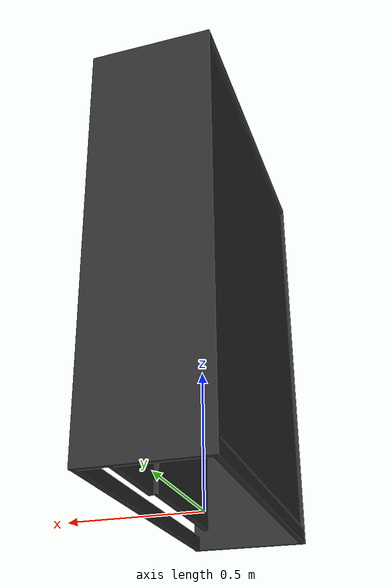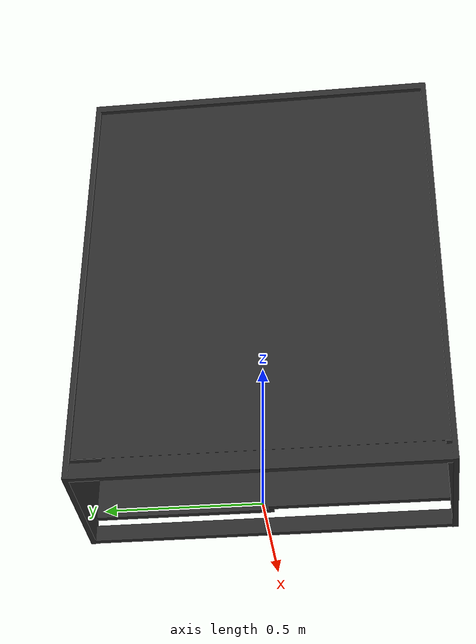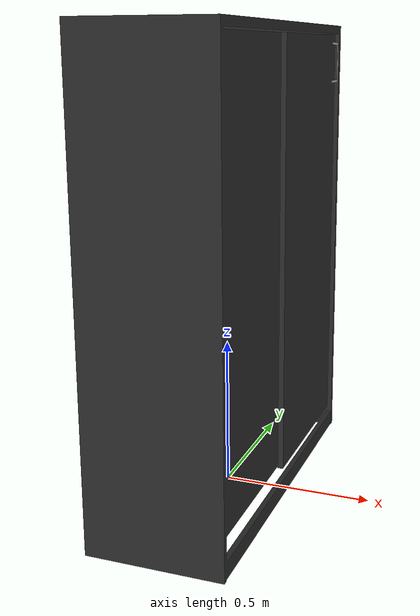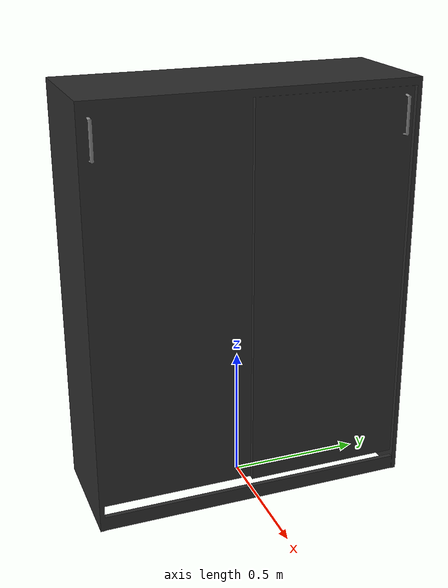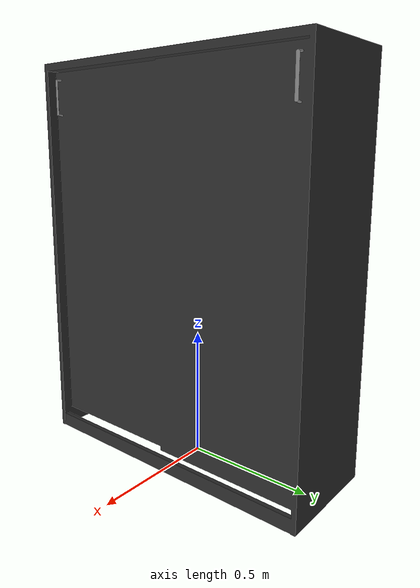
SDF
<?xml version="1.0" ?>
<sdf version="1.0">
  <model name="high_cabinet_fix">
    <static>true</static>
    <link name="high_cabinet_fix">
      <collision name="high_cabinet_fix">
        <pose>0 0 0 0 0 0</pose>
        <geometry>
          <mesh>
            <uri>model://high_cabinet_fix/meshes/model.dae</uri>
          </mesh>
        </geometry>
      </collision>

      <visual name="high_cabinet_fix">
      <cast_shadows>true</cast_shadows>
        <geometry>
          <mesh>
          <uri>model://high_cabinet_fix/meshes/model.dae</uri>
        </mesh>
        </geometry>
      </visual>
    </link>
  </model>
</sdf>
